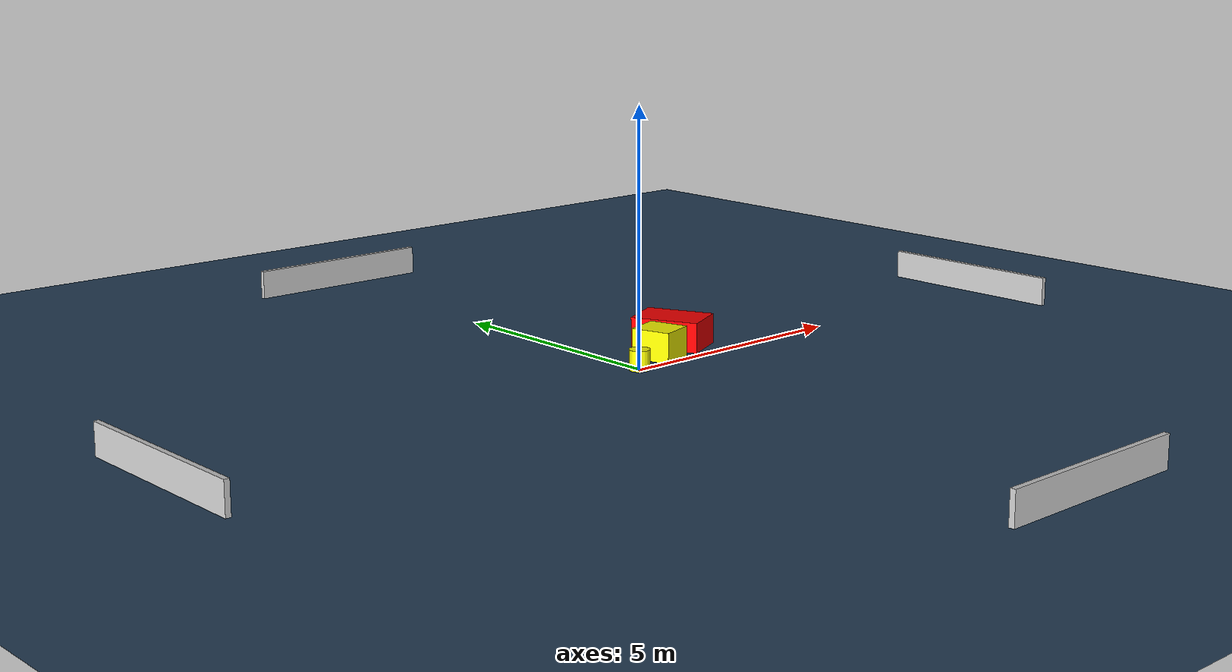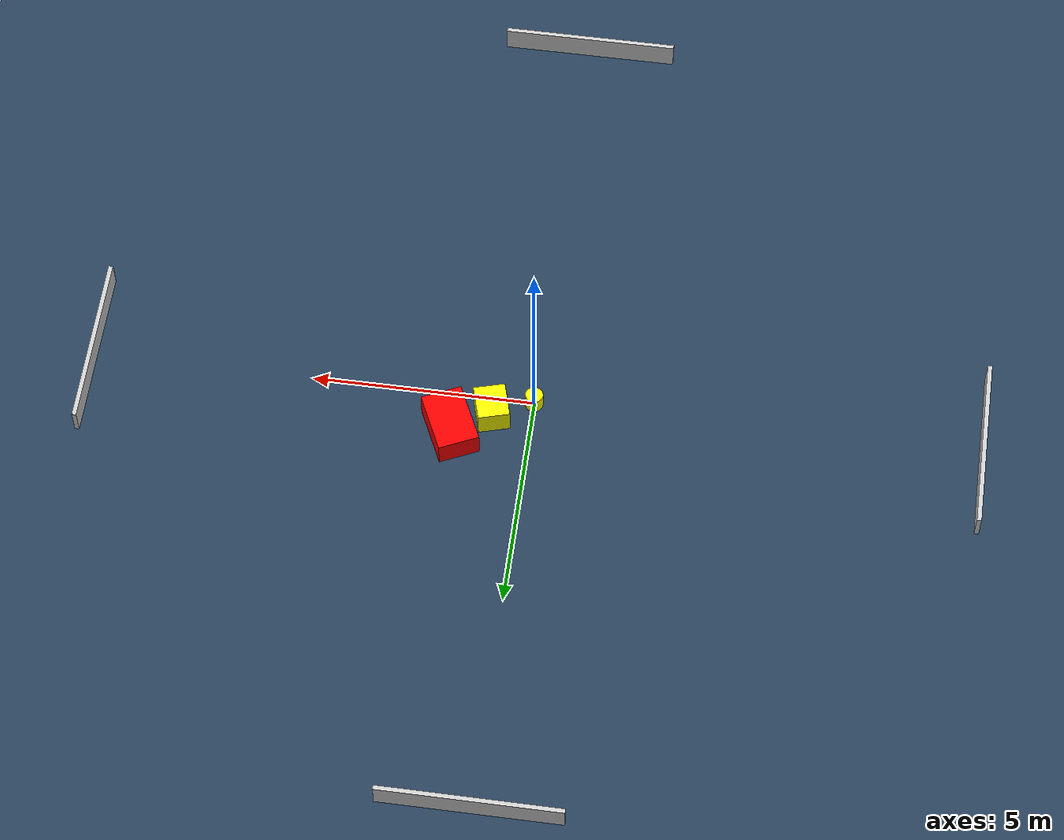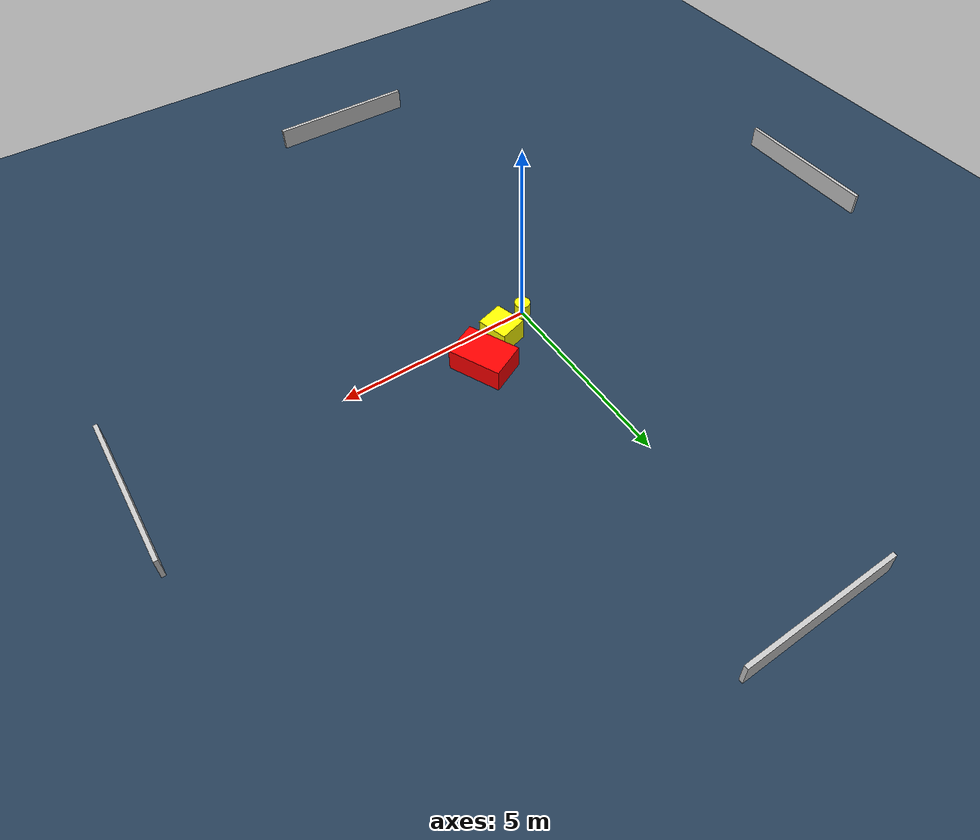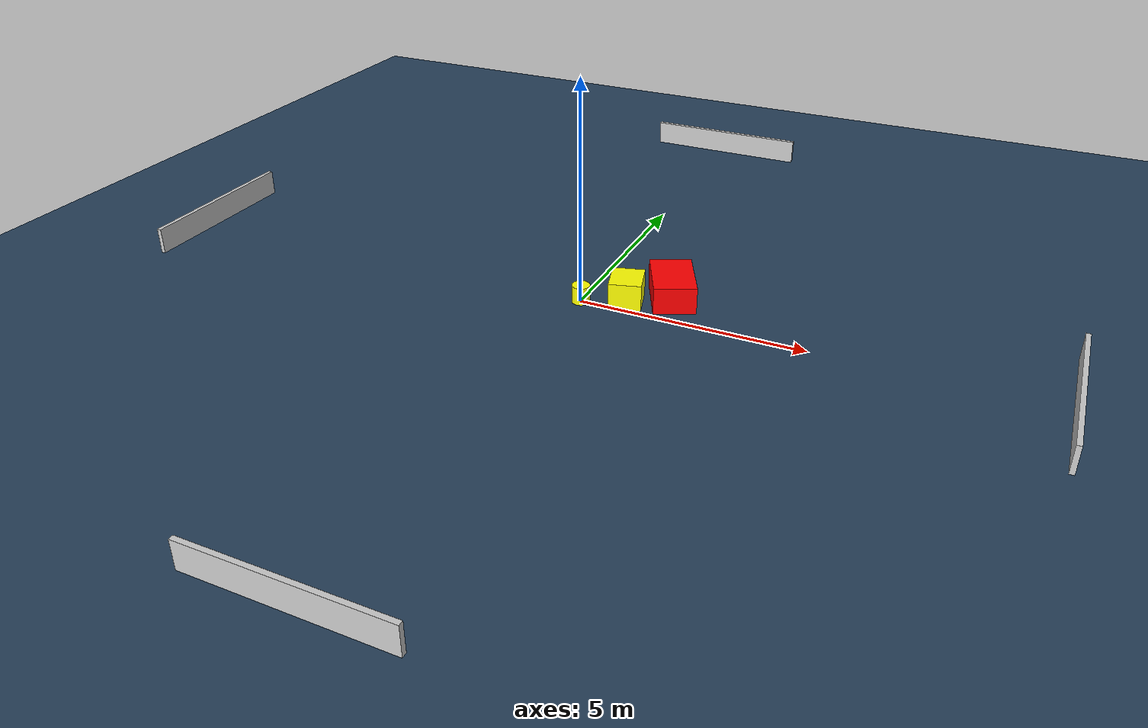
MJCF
<?xml version="1.0" ?>
<mujoco model="generated_environment">
  <option timestep="0.01" integrator="RK4" cone="elliptic"/>
  <default>
    <geom density="1"/>
  </default>
  <asset>
    <texture builtin="gradient" height="3072" name="skybox" rgb1="0.3 0.5 0.7" rgb2="0 0 0" type="skybox" width="512"/>
    <texture builtin="checker" height="300" name="groundplane" rgb1="0.2 0.3 0.4" rgb2="0.1 0.2 0.3" type="2d" width="300"/>
    <material name="groundplane" reflectance="0.2" texrepeat="5 5" texture="groundplane"/>
  </asset>
  <worldbody>
    <light dir="0 0 -1" directional="true" pos="0 0 1.5"/>
    <geom condim="3" friction="0.5 0.005 0.001" material="groundplane" name="floor" pos="0 0 0" size="0 0 0.05" type="plane"/>
    <body name="walls">
      <geom name="wall_1" condim="4" pos="-10.0 0.0 0.3" rgba="0.800000011920929 0.800000011920929 0.800000011920929 1.0" size="0.05 2.0 0.3" type="box"/>
      <geom name="wall_2" condim="4" pos="10.0 0.0 0.3" rgba="0.800000011920929 0.800000011920929 0.800000011920929 1.0" size="0.05 2.0 0.3" type="box"/>
      <geom name="wall_3" condim="4" pos="0.0 -10.0 0.3" rgba="0.800000011920929 0.800000011920929 0.800000011920929 1.0" size="2.0 0.05 0.3" type="box"/>
      <geom name="wall_4" condim="4" pos="0.0 10.0 0.3" rgba="0.800000011920929 0.800000011920929 0.800000011920929 1.0" size="2.0 0.05 0.3" type="box"/>
    </body>
    <body name="robot">
      <joint name="joint_x" type="slide" pos="0 0 0" axis="1 0 0"/>
      <joint name="joint_y" type="slide" pos="0 0 0" axis="0 1 0"/>
      <geom name="robot" type="cylinder" pos="0.0 0.0 0.2" size="0.2 0.2 0.0" mass="5.0" friction="1.0 0.005 0.0001" condim="4" rgba="1.0 1.0 0.0 1.0"/>
    </body>
    <body name="obstacle_1_movable">
      <geom name="obstacle_1_movable" condim="4" pos="0.8996025561644001 0.4069277300198159 0.3" euler="0 0 195.80960444518288" friction="0.0 0.005 0.001" rgba="1.0 1.0 0.0 1.0" size="0.35623836642408074 0.4015725863486374 0.3" type="box" mass="0.1"/>
      <joint type="free"/>
    </body>
    <body name="obstacle_2_static">
      <geom name="obstacle_2_static" condim="4" pos="1.7522852092895083 0.9476657881317467 0.3" euler="0 0 205.1832461216244" friction="0.0 0.005 0.001" rgba="1.0 0.0 0.0 1.0" size="0.46459740641616454 0.690804043627802 0.3" type="box"/>
    </body>
  </worldbody>
  <actuator>
    <motor name="actuator_x" joint="joint_x" gear="1" ctrlrange="-1 1"/>
    <motor name="actuator_y" joint="joint_y" gear="1" ctrlrange="-1 1"/>
  </actuator>
</mujoco>
